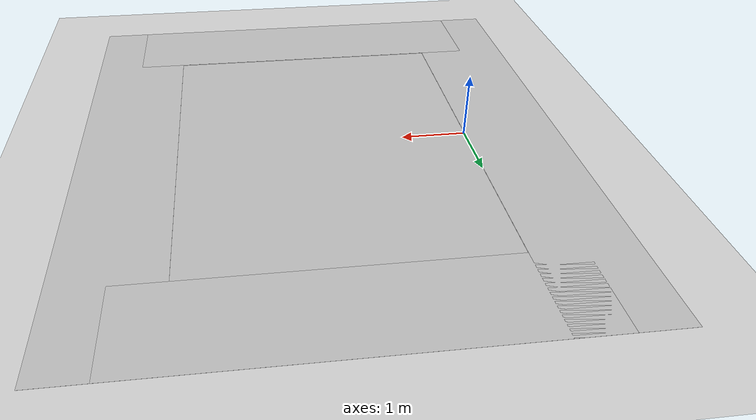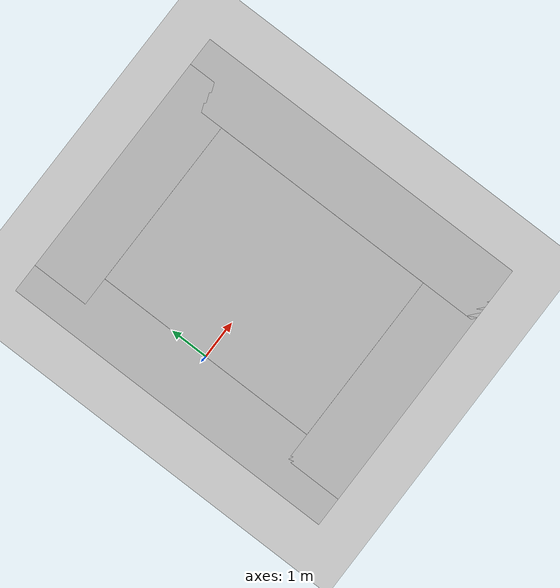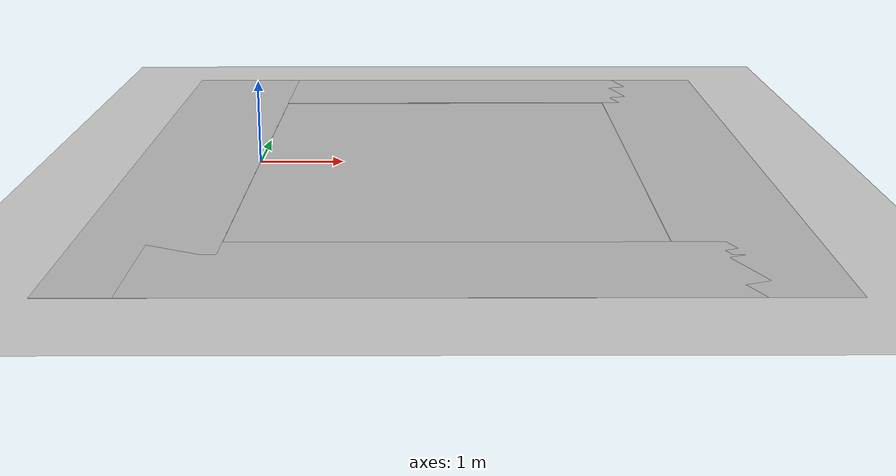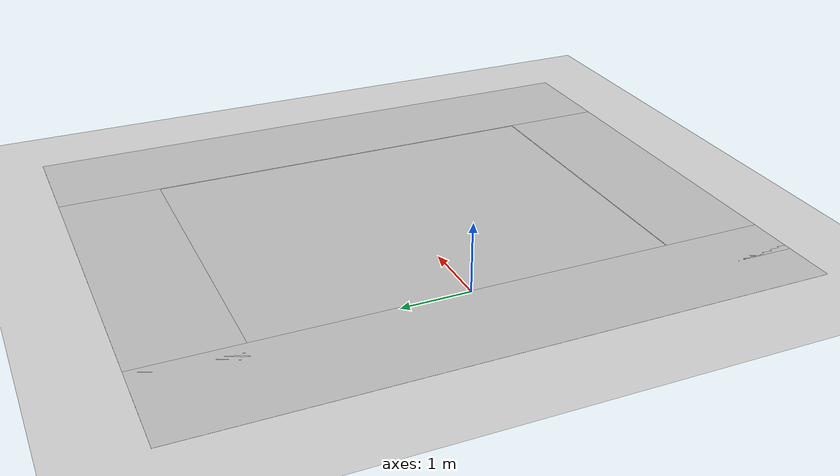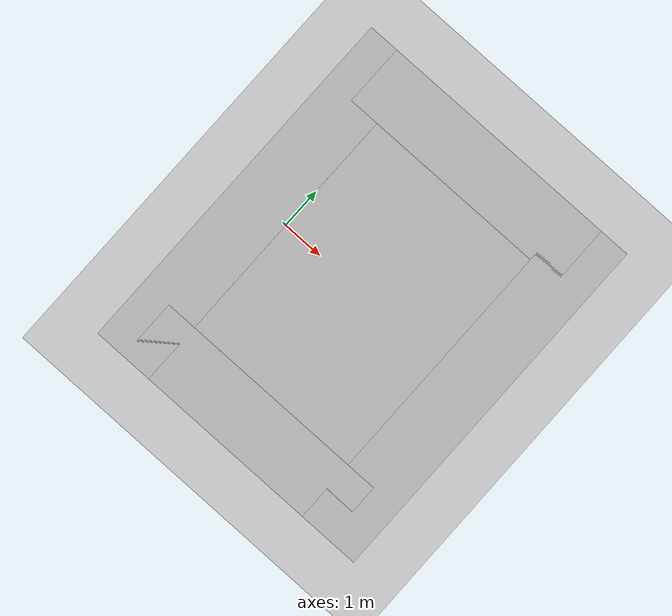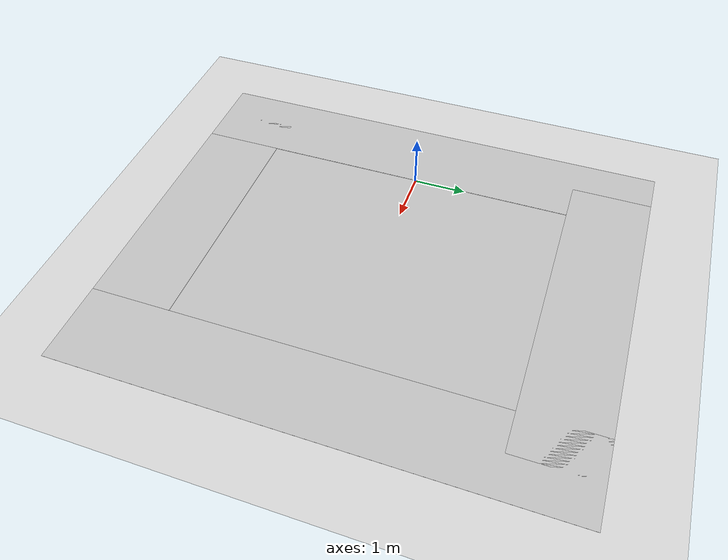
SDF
<sdf version="1.5">
 <world name="KRSBI_regional">
  <scene><ambient>0.4 0.4 0.4 1</ambient><background>0.7 0.7 0.7 1</background><shadows>0</shadows></scene>
  <spherical_coordinates>
   <surface_model>EARTH_WGS84</surface_model>
   <latitude_deg>0</latitude_deg>
   <longitude_deg>0</longitude_deg>
   <elevation>0</elevation>
   <heading_deg>0</heading_deg>
  </spherical_coordinates>
  <light type="directional" name="sun">
   <cast_shadows>0</cast_shadows>
   <pose>0 0 10 0 0 0</pose>
   <diffuse>0.8 0.8 0.8 1</diffuse>
   <specular>0.2 0.2 0.2 1</specular>
   <attenuation>
    <range>1000</range>
    <constant>0.9</constant>
    <linear>0.01</linear>
    <quadratic>0.001</quadratic>
   </attenuation>
   <direction>-0.5 0.1 -0.9</direction>
  </light>
  <physics type="ode">
   <max_step_size>0.015</max_step_size>
   <real_time_update_rate>67</real_time_update_rate>
   <gravity>0 0 -9.8</gravity>
  </physics>
  <model name="ground_plane">
   <static>true</static>
   <link name="link">
    <collision name="collision">
     <geometry><plane><normal>0 0 1</normal><size>100 100</size></plane></geometry>
     <surface><friction><ode><mu>100</mu><mu2>50</mu2></ode></friction></surface>
    </collision>
    <visual name="visual">
     <cast_shadows>0</cast_shadows>
     <geometry><plane><normal>0 0 1</normal><size>100 100</size></plane></geometry>
     <material>
      <script><uri>file://media/materials/scripts/gazebo.material</uri><name>Gazebo/Grey</name></script>
     </material>
    </visual>
    <velocity_decay><linear>0</linear><angular>0</angular></velocity_decay>
   </link>
  </model>
  <include>
   <pose>2.25 0 0 0 0 0</pose>
   <uri>model://KRSBI_Regional_Field</uri>
   <name>field</name>
   <static>true</static>
  </include>
 </world>
</sdf>

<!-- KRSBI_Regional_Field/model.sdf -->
<sdf version="1.4">
  <model name="KRSBI_Regional_field">
    <static>true</static>

    <link name="chassis">
      <pose>0 0 0.01 0 0 0</pose>
      <collision name="collision">
        <geometry>
          <plane>
            <normal>0 0 1</normal>
            <size>4.5 6</size>
          </plane>
        </geometry>
        <surface>
          <friction>
            <ode>
              <mu>100</mu>
              <mu2>50</mu2>
            </ode>
          </friction>
        </surface>
      </collision>

      <visual name="carpet">
        <cast_shadows>false</cast_shadows>
        <geometry>
          <plane>
            <normal>0 0 1</normal>
            <size>4.5 6</size>
          </plane>
        </geometry>
        <material>
          <script>
            <uri>file://materials/scripts/</uri>
            <uri>file://materials/textures/</uri>
            <name>RoboCup/Carpet</name>
          </script>
        </material>
      </visual>

       <visual name="base1">
        <pose>0 3.75 0.01 0 0 0</pose>
        <cast_shadows>false</cast_shadows>
        <geometry>
          <plane>
            <normal>0 0 1</normal>
            <size>6.0 1.5</size>
          </plane>
        </geometry>
        <material>
          <script>
            <uri>file://materials/scripts/</uri>
            <uri>file://materials/textures/</uri>
            <name>RoboCup/FieldBorder</name>
          </script>
        </material>
      </visual>
      <visual name="base2">
        <pose>0 -3.75 0.01 0 0 0</pose>
        <cast_shadows>false</cast_shadows>
        <geometry>
          <plane>
            <normal>0 0 1</normal>
            <size>6.0 1.5</size>
          </plane>
        </geometry>
        <material>
          <script>
            <uri>file://materials/scripts/</uri>
            <uri>file://materials/textures/</uri>
            <name>RoboCup/FieldBorder</name>
          </script>
        </material>
      </visual>
      <visual name="base3">
        <pose>3.0 0 0.01 0 0 0</pose>
        <cast_shadows>false</cast_shadows>
        <geometry>
          <plane>
            <normal>0 0 1</normal>
            <size>1.5 9.0</size>
          </plane>
        </geometry>
        <material>
          <script>
            <uri>file://materials/scripts/</uri>
            <uri>file://materials/textures/</uri>
            <name>RoboCup/FieldBorder</name>
          </script>
        </material>
      </visual>
      <visual name="base4">
        <pose>-3.0 0 0.01 0 0 0</pose>
        <cast_shadows>false</cast_shadows>
        <geometry>
          <plane>
            <normal>0 0 1</normal>
            <size>1.5 9.0</size>
          </plane>
        </geometry>
        <material>
          <script>
            <uri>file://materials/scripts/</uri>
            <uri>file://materials/textures/</uri>
            <name>RoboCup/FieldBorder</name>
          </script>
        </material>
      </visual>
    </link>

  </model>
</sdf>
